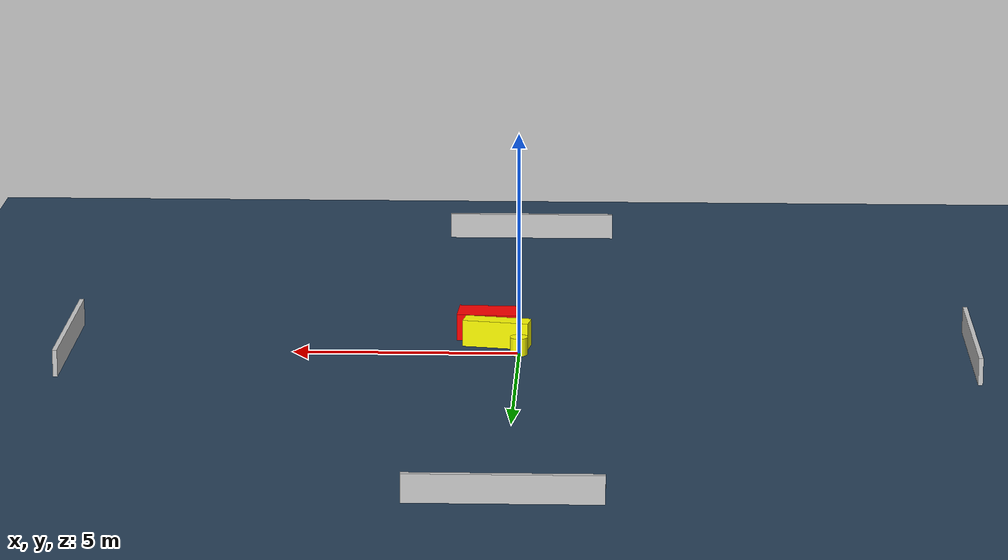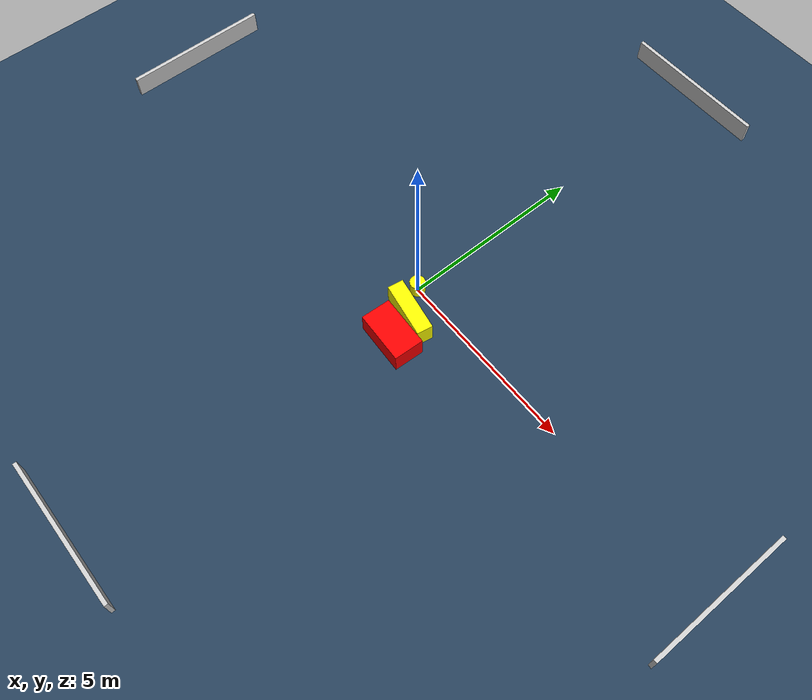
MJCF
<?xml version="1.0" ?>
<mujoco model="generated_environment">
  <option timestep="0.01" integrator="RK4" cone="elliptic"/>
  <default>
    <geom density="1"/>
  </default>
  <asset>
    <texture builtin="gradient" height="3072" name="skybox" rgb1="0.3 0.5 0.7" rgb2="0 0 0" type="skybox" width="512"/>
    <texture builtin="checker" height="300" name="groundplane" rgb1="0.2 0.3 0.4" rgb2="0.1 0.2 0.3" type="2d" width="300"/>
    <material name="groundplane" reflectance="0.2" texrepeat="5 5" texture="groundplane"/>
  </asset>
  <worldbody>
    <light dir="0 0 -1" directional="true" pos="0 0 1.5"/>
    <geom condim="3" friction="0.5 0.005 0.001" material="groundplane" name="floor" pos="0 0 0" size="0 0 0.05" type="plane"/>
    <body name="walls">
      <geom name="wall_1" condim="4" pos="-10.0 0.0 0.3" rgba="0.800000011920929 0.800000011920929 0.800000011920929 1.0" size="0.05 2.0 0.3" type="box"/>
      <geom name="wall_2" condim="4" pos="10.0 0.0 0.3" rgba="0.800000011920929 0.800000011920929 0.800000011920929 1.0" size="0.05 2.0 0.3" type="box"/>
      <geom name="wall_3" condim="4" pos="0.0 -10.0 0.3" rgba="0.800000011920929 0.800000011920929 0.800000011920929 1.0" size="2.0 0.05 0.3" type="box"/>
      <geom name="wall_4" condim="4" pos="0.0 10.0 0.3" rgba="0.800000011920929 0.800000011920929 0.800000011920929 1.0" size="2.0 0.05 0.3" type="box"/>
    </body>
    <body name="robot">
      <joint name="joint_x" type="slide" pos="0 0 0" axis="1 0 0"/>
      <joint name="joint_y" type="slide" pos="0 0 0" axis="0 1 0"/>
      <geom name="robot" type="cylinder" pos="0.0 0.0 0.2" size="0.2 0.2 0.0" mass="5.0" friction="1.0 0.005 0.0001" condim="4" rgba="1.0 1.0 0.0 1.0"/>
    </body>
    <body name="obstacle_1_movable">
      <geom name="obstacle_1_movable" condim="4" pos="0.507235469497299 -0.6559578558458575 0.3" euler="0 0 260.22663141771505" friction="0.0 0.005 0.001" rgba="1.0 1.0 0.0 1.0" size="0.21008552587055343 0.7410077319133197 0.3" type="box" mass="0.1"/>
      <joint type="free"/>
    </body>
    <body name="obstacle_2_static">
      <geom name="obstacle_2_static" condim="4" pos="0.7135021934971151 -1.378996607903619 0.3" euler="0 0 357.0707453638384" friction="0.0 0.005 0.001" rgba="1.0 0.0 0.0 1.0" size="0.6944612888308102 0.395576165745407 0.3" type="box"/>
    </body>
  </worldbody>
  <actuator>
    <motor name="actuator_x" joint="joint_x" gear="1" ctrlrange="-1 1"/>
    <motor name="actuator_y" joint="joint_y" gear="1" ctrlrange="-1 1"/>
  </actuator>
</mujoco>
